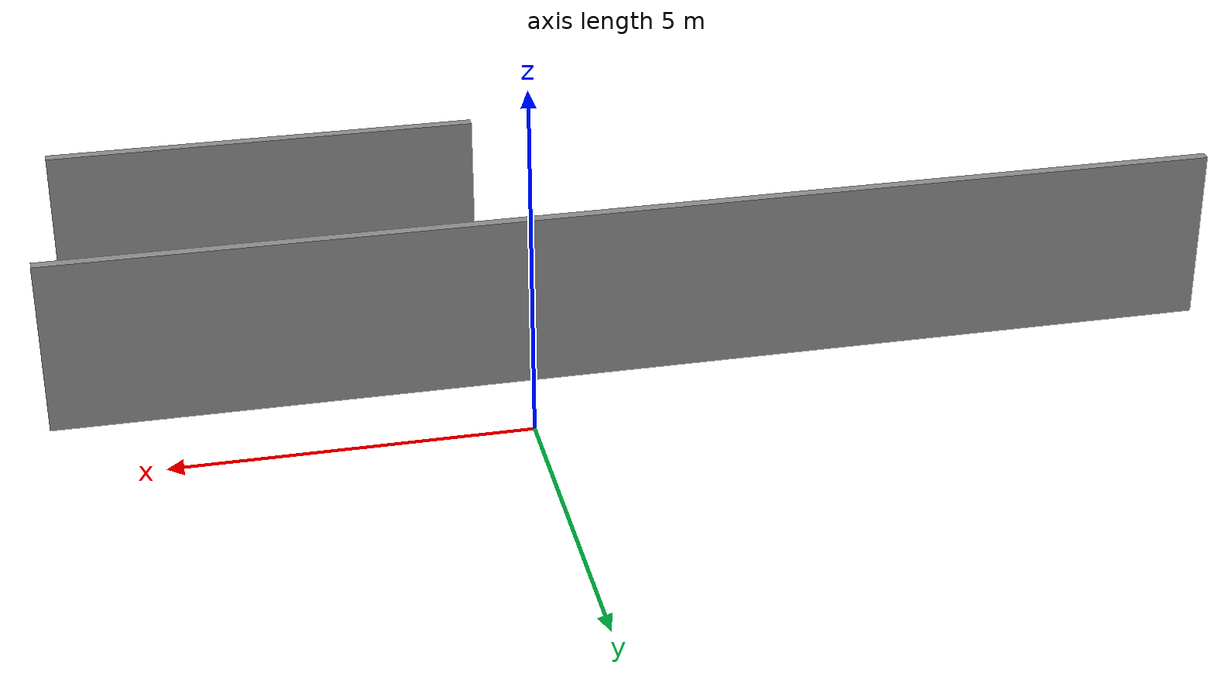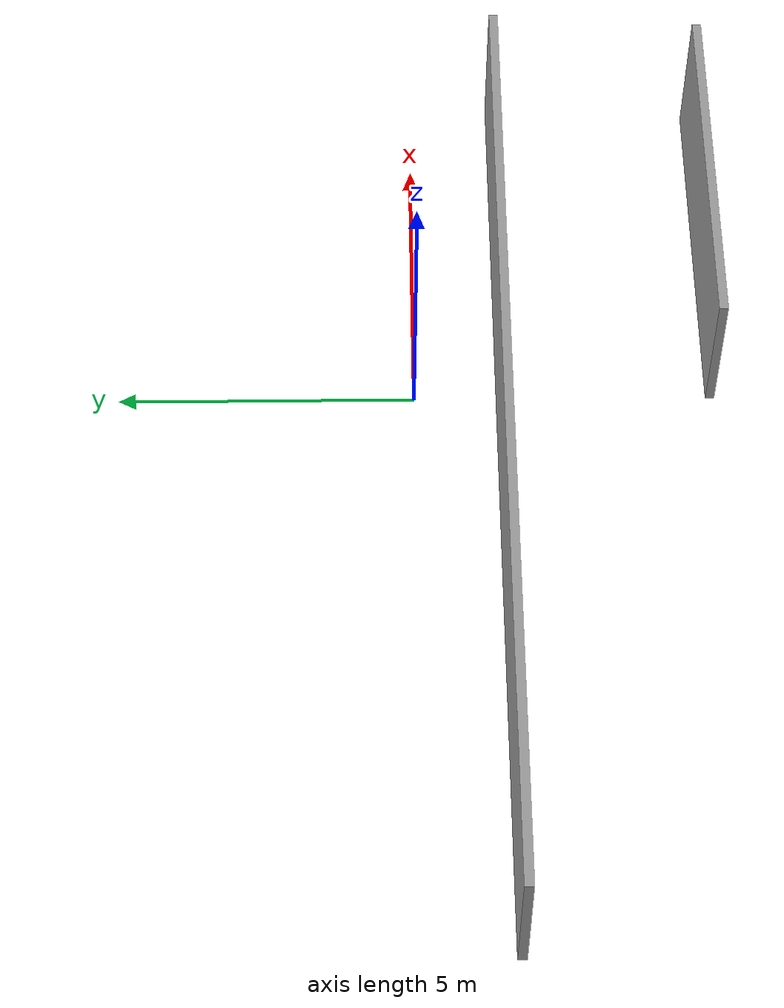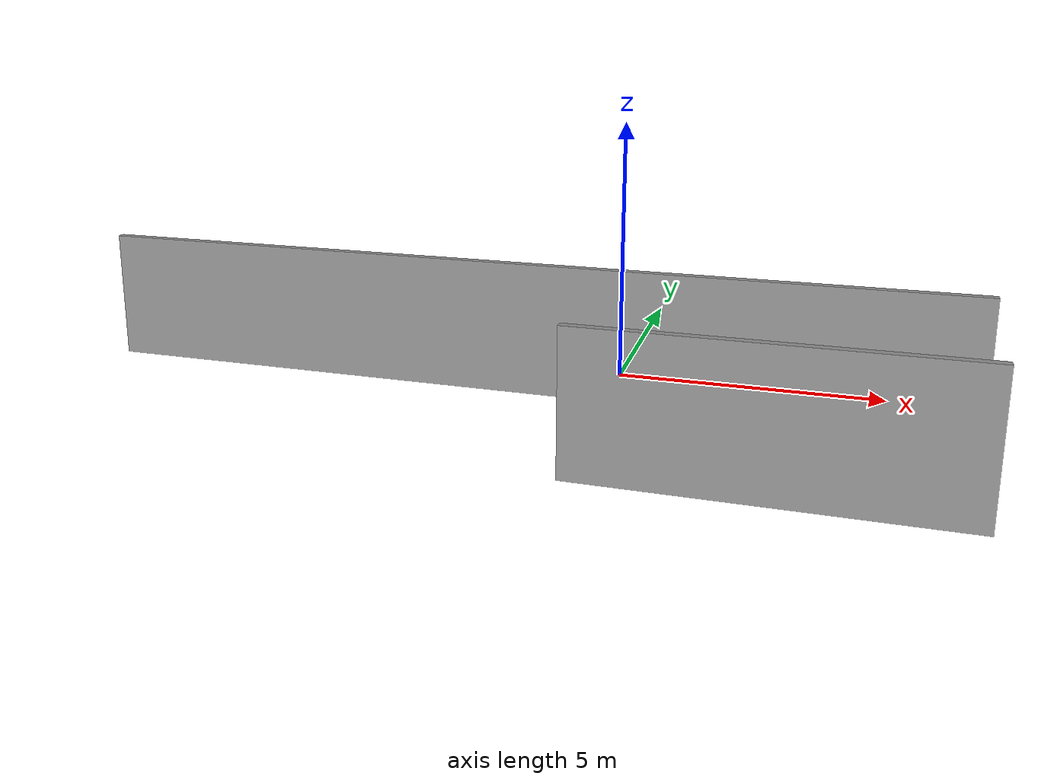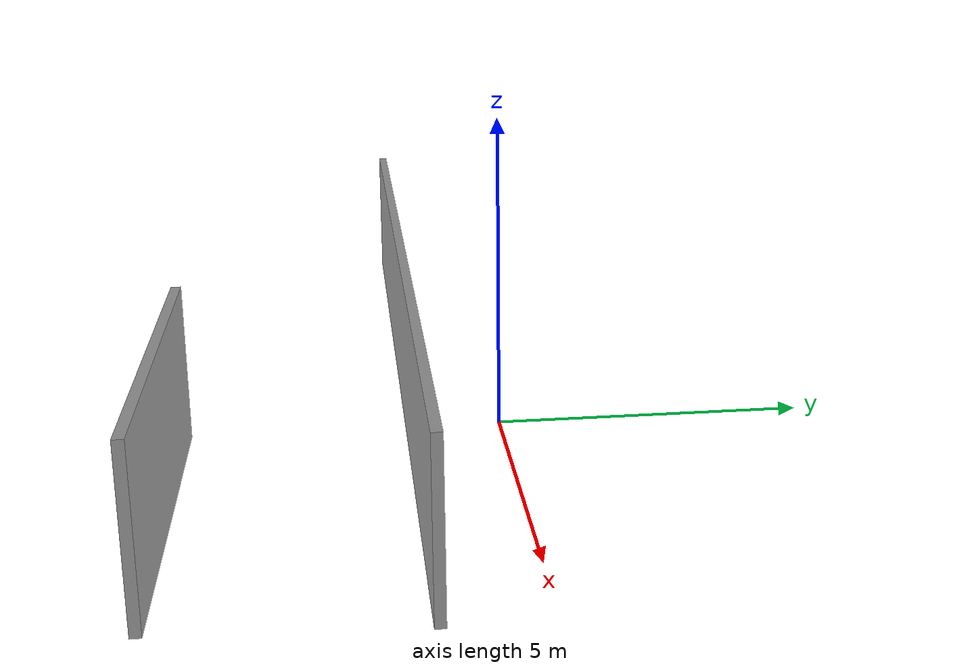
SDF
<?xml version='1.0'?>
<sdf version='1.7'>
  <model name='room'>
    <pose>-1.86956 -2.53902 0 0 -0 0</pose>
    <link name='Wall_13'>
      <collision name='Wall_13_Collision'>
        <geometry>
          <box>
            <size>16.75 0.15 2.5</size>
          </box>
        </geometry>
        <pose>0 0 1.25 0 -0 0</pose>
      </collision>
      <visual name='Wall_13_Visual'>
        <pose>0 0 1.25 0 -0 0</pose>
        <geometry>
          <box>
            <size>16.75 0.15 2.5</size>
          </box>
        </geometry>
        <material>
          <script>
            <uri>file://media/materials/scripts/gazebo.material</uri>
            <name>Gazebo/Grey</name>
          </script>
          <ambient>1 1 1 1</ambient>
        </material>
        <meta>
          <layer>0</layer>
        </meta>
      </visual>
      <pose>-0 1.0838 0 0 -0 3.14159</pose>
    </link>
    <link name='Wall_4'>
      <collision name='Wall_4_Collision'>
        <geometry>
          <box>
            <size>6.25 0.15 2.5</size>
          </box>
        </geometry>
        <pose>0 0 1.25 0 -0 0</pose>
      </collision>
      <visual name='Wall_4_Visual'>
        <pose>0 0 1.25 0 -0 0</pose>
        <geometry>
          <box>
            <size>6.25 0.15 2.5</size>
          </box>
        </geometry>
        <material>
          <script>
            <uri>file://media/materials/scripts/gazebo.material</uri>
            <name>Gazebo/Grey</name>
          </script>
          <ambient>1 1 1 1</ambient>
        </material>
        <meta>
          <layer>0</layer>
        </meta>
      </visual>
      <pose>4.98913 -2.46402 0 0 -0 3.14159</pose>
    </link>
    <static>1</static>
  </model>
</sdf>
